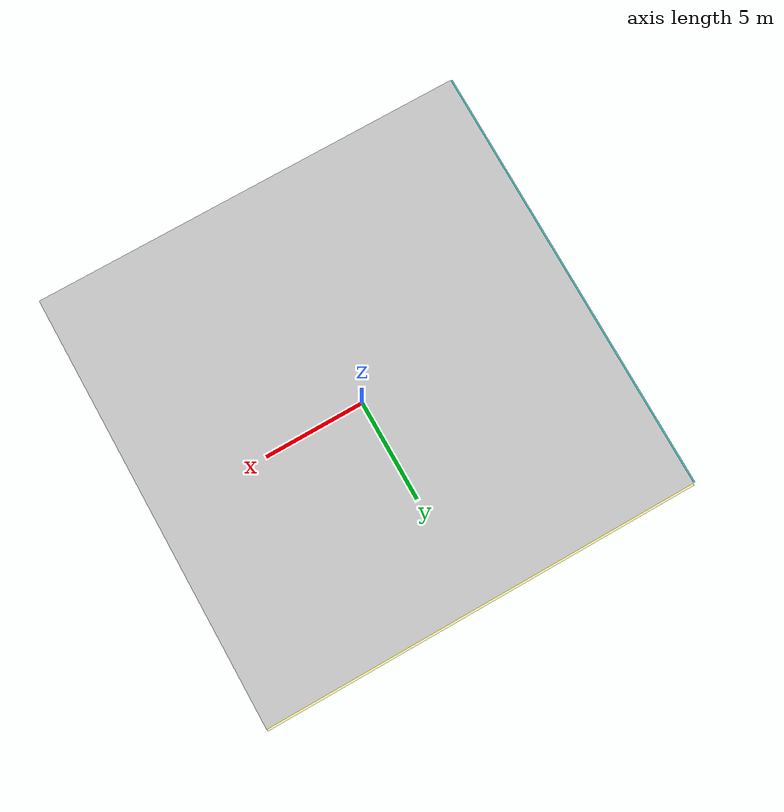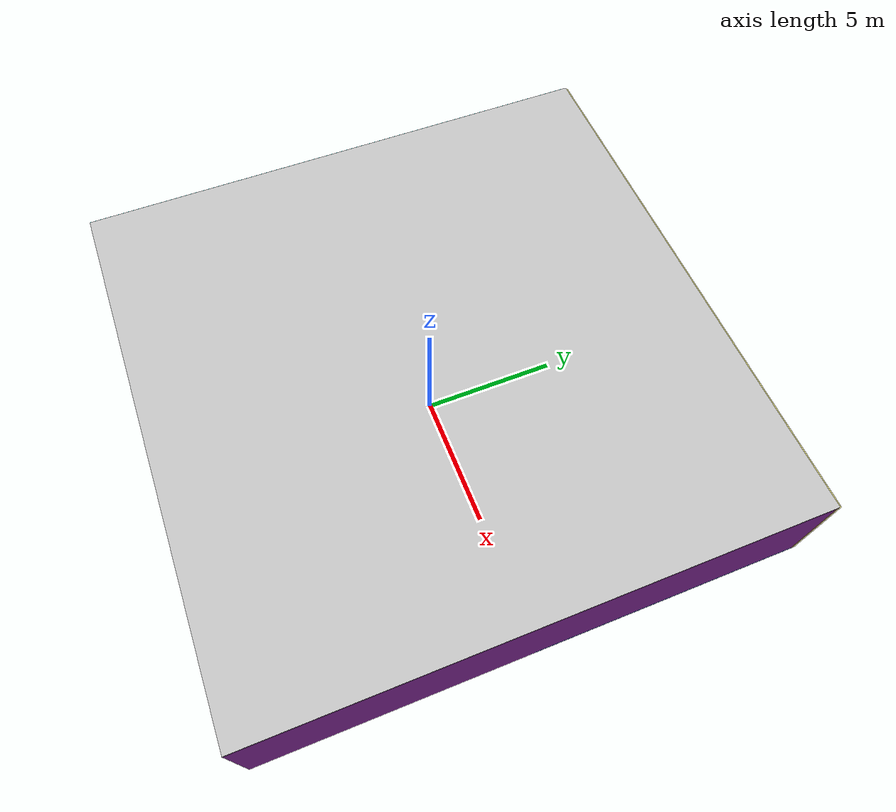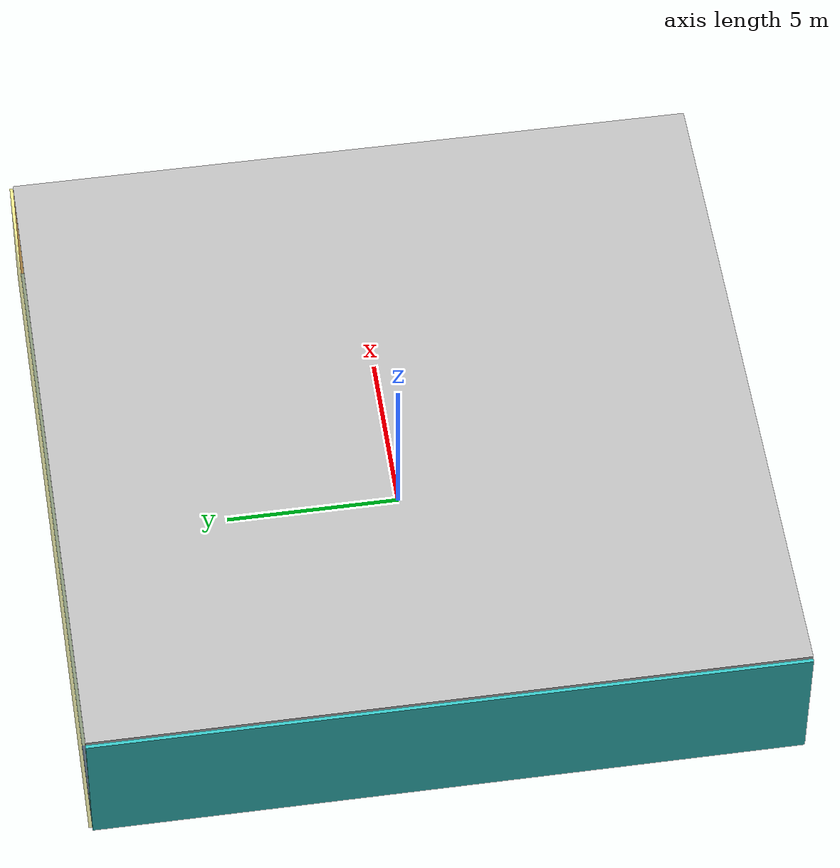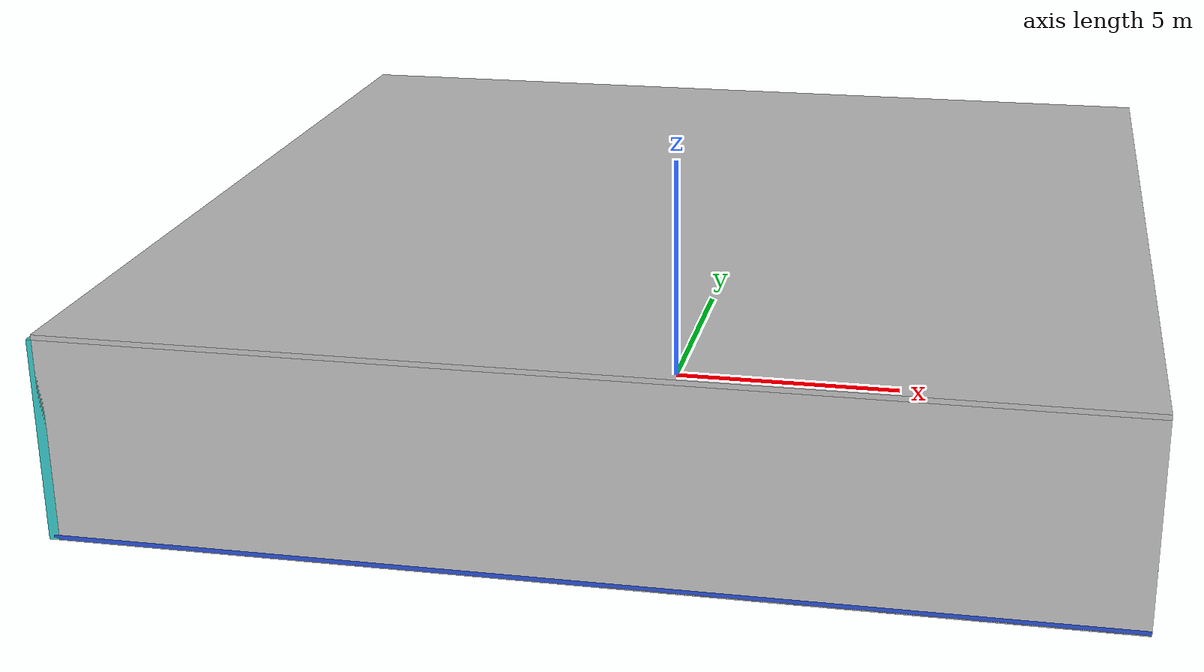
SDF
<sdf version="1.4">
 <world name="default">
  <physics type="ode">
   <max_step_size>0.001</max_step_size>
   <real_time_factor>1</real_time_factor>
   <real_time_update_rate>1000</real_time_update_rate>
   <gravity>0 0 -9.8</gravity>
  </physics>
  <scene><ambient>0.4 0.4 0.4 1</ambient><background>0.7 0.7 0.7 1</background><shadows>1</shadows></scene>
  <model name="Surrounding">
   <static>1</static>
   <link name="Ceiling">
    <collision name="Ceiling_Collision"><geometry><box><size>20 20 0.1</size></box></geometry></collision>
    <visual name="Ceiling_Visual">
     <geometry><box><size>20 20 0.1</size></box></geometry>
     <material>
      <script><uri>file://media/materials/scripts/gazebo.material</uri><name>Gazebo/CloudySky</name></script>
     </material>
    </visual>
    <pose>0 0 4.05 0 0 0</pose>
   </link>
   <link name="Wall_South">
    <collision name="Wall_South_Collision">
     <geometry><box><size>20 0 4</size></box></geometry>
     <pose>0 0 2 0 -0 0</pose>
    </collision>
    <visual name="Wall_South_Visual">
     <pose>0 0 2 0 -0 0</pose>
     <geometry><box><size>20 0 4</size></box></geometry>
     <material>
      <script><uri>file://media/materials/scripts/gazebo.material</uri><name>Gazebo/JointAnchor</name></script>
     </material>
    </visual>
    <velocity_decay><linear>0</linear><angular>0</angular></velocity_decay>
    <pose>0 -10 0 0 -0 0</pose>
   </link>
   <link name="Wall_East">
    <collision name="Wall_21_Collision">
     <geometry><box><size>20 0 4</size></box></geometry>
     <pose>0 0 2 0 -0 0</pose>
    </collision>
    <visual name="Wall_21_Visual">
     <pose>0 0 2 0 -0 0</pose>
     <geometry><box><size>20 0 4</size></box></geometry>
     <material>
      <script><uri>file://media/materials/scripts/gazebo.material</uri><name>Gazebo/PurpleGlow</name></script>
     </material>
    </visual>
    <velocity_decay><linear>0</linear><angular>0</angular></velocity_decay>
    <pose>10 0 0 0 -0 1.5708</pose>
   </link>
   <link name="Wall_North">
    <collision name="Wall_22_Collision">
     <geometry><box><size>20 0.2 4</size></box></geometry>
     <pose>0 0 2 0 -0 0</pose>
    </collision>
    <visual name="Wall_22_Visual">
     <pose>0 0 2 0 -0 0</pose>
     <geometry><box><size>20 0.2 4</size></box></geometry>
     <material>
      <script>
       <uri>file://media/materials/scripts/gazebo.material</uri>
       <name>Gazebo/YellowTransparent</name>
      </script>
     </material>
    </visual>
    <velocity_decay><linear>0</linear><angular>0</angular></velocity_decay>
    <pose>0 10 0 0 -0 0</pose>
   </link>
   <link name="Wall_West">
    <collision name="Wall_23_Collision">
     <geometry><box><size>20 0.2 4</size></box></geometry>
     <pose>0 0 2 0 -0 0</pose>
    </collision>
    <visual name="Wall_23_Visual">
     <pose>0 0 2 0 -0 0</pose>
     <geometry><box><size>20 0.2 4</size></box></geometry>
     <material>
      <script><uri>file://media/materials/scripts/gazebo.material</uri><name>Gazebo/TurquoiseGlow</name></script>
     </material>
    </visual>
    <velocity_decay><linear>0</linear><angular>0</angular></velocity_decay>
    <pose>-10 0 0 0 0 -1.5708</pose>
   </link>
   <link name="Ground_link">
    <collision name="collision">
     <pose>0 0 .05 0 -0 0</pose>
     <geometry><box><size>20 20 0.1</size></box></geometry>
    </collision>
    <visual name="visual">
     <pose>0 0 .05 0 -0 0</pose>
     <geometry><box><size>20 20 0.1</size></box></geometry>
     <material>
      <script><uri>file://media/materials/scripts/gazebo.material</uri><name>Gazebo/BlueGlow</name></script>
     </material>
    </visual>
   </link>
   <static>1</static>
  </model>
  <spherical_coordinates>
   <surface_model>EARTH_WGS84</surface_model>
   <latitude_deg>0</latitude_deg>
   <longitude_deg>0</longitude_deg>
   <elevation>0</elevation>
   <heading_deg>0</heading_deg>
  </spherical_coordinates>
  <light name="lightball_0" type="diffuse">
   <diffuse>0.8 0.8 0.8 1</diffuse>
   <specular>0.2 0.2 0.2 1</specular>
   <attenuation>
    <range>100</range>
    <constant>0.7</constant>
    <linear>0.01</linear>
    <quadratic>0.001</quadratic>
   </attenuation>
   <direction>-0.5 0.1 -0.9</direction>
   <pose>1.18916055037 -3.6581074119 3.52634219054 0 0 0</pose>
  </light>
  <light name="lightball_1" type="diffuse">
   <diffuse>0.8 0.8 0.8 1</diffuse>
   <specular>0.2 0.2 0.2 1</specular>
   <attenuation>
    <range>100</range>
    <constant>0.7</constant>
    <linear>0.01</linear>
    <quadratic>0.001</quadratic>
   </attenuation>
   <direction>-0.5 0.1 -0.9</direction>
   <pose>3.71898935705 -1.81880172734 3.17240587534 0 0 0</pose>
  </light>
  <light name="lightball_2" type="diffuse">
   <diffuse>0.8 0.8 0.8 1</diffuse>
   <specular>0.2 0.2 0.2 1</specular>
   <attenuation>
    <range>100</range>
    <constant>0.7</constant>
    <linear>0.01</linear>
    <quadratic>0.001</quadratic>
   </attenuation>
   <direction>-0.5 0.1 -0.9</direction>
   <pose>8.57153562341 2.12634246039 2.41226669088 0 0 0</pose>
  </light>
  <light name="lightball_3" type="diffuse">
   <diffuse>0.8 0.8 0.8 1</diffuse>
   <specular>0.2 0.2 0.2 1</specular>
   <attenuation>
    <range>100</range>
    <constant>0.7</constant>
    <linear>0.01</linear>
    <quadratic>0.001</quadratic>
   </attenuation>
   <direction>-0.5 0.1 -0.9</direction>
   <pose>5.83811237742 1.41529323857 3.40672052641 0 0 0</pose>
  </light>
  <light name="lightball_4" type="diffuse">
   <diffuse>0.8 0.8 0.8 1</diffuse>
   <specular>0.2 0.2 0.2 1</specular>
   <attenuation>
    <range>100</range>
    <constant>0.7</constant>
    <linear>0.01</linear>
    <quadratic>0.001</quadratic>
   </attenuation>
   <direction>-0.5 0.1 -0.9</direction>
   <pose>8.02703266465 -2.55415822334 1.62737461967 0 0 0</pose>
  </light>
  <light name="lightball_5" type="diffuse">
   <diffuse>0.8 0.8 0.8 1</diffuse>
   <specular>0.2 0.2 0.2 1</specular>
   <attenuation>
    <range>100</range>
    <constant>0.7</constant>
    <linear>0.01</linear>
    <quadratic>0.001</quadratic>
   </attenuation>
   <direction>-0.5 0.1 -0.9</direction>
   <pose>5.87748724927 1.61529279884 1.82752518369 0 0 0</pose>
  </light>
  <light name="lightball_6" type="diffuse">
   <diffuse>0.8 0.8 0.8 1</diffuse>
   <specular>0.2 0.2 0.2 1</specular>
   <attenuation>
    <range>100</range>
    <constant>0.7</constant>
    <linear>0.01</linear>
    <quadratic>0.001</quadratic>
   </attenuation>
   <direction>-0.5 0.1 -0.9</direction>
   <pose>9.26373243355 8.4191814682 3.26118050662 0 0 0</pose>
  </light>
  <include><uri>model://cabinet</uri><pose>-3.76622948651 -7.44058121748 0 0 0 1.64195530275</pose></include>
  <include><uri>model://table</uri><pose>-0.347805548938 2.59431408546 0 0 0 2.71670673436</pose></include>
  <include><uri>model://cabinet</uri><pose>5.32791955033 4.24001121821 0 0 0 2.1423235139</pose></include>
 </world>
</sdf>

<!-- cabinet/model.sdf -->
<sdf version="1.5">
  <model name="cabinet">
    <static>true</static>
    <link name="cabinet_bottom_plate">
      <inertial>
        <pose>0 0 -1 0 0 0</pose>
        <inertia>
          <ixx>2.050000</ixx>
          <ixy>0</ixy>
          <ixz>0</ixz>
          <iyy>2.050000</iyy>
          <iyz>0</iyz>
          <izz>2.050000</izz>
        </inertia>
        <mass>25.000000</mass>
      </inertial>
      <collision name="cabinet_bottom_plate_geom">
        <pose>0 0 0.010000 0 0 0</pose>
        <geometry>
          <box>
            <size>0.450000 0.450000 0.020000</size>
          </box>
        </geometry>
      </collision>
      <visual name="cabinet_bottom_plate_geom_visual">
        <pose>0 0 0.010000 0 0 0</pose>
        <geometry>
          <box>
            <size>0.450000 0.450000 0.020000</size>
          </box>
        </geometry>
        <material>
          <script>
            <uri>model://media/materials/scripts/gazebo.material</uri>
            <name>Gazebo/Wood</name>
          </script>
        </material>
      </visual>
      <collision name="cabinet_bottom_plate_geom_cabinet_back_plate">
        <pose>0.235000 0 0.510000 0 0 0</pose>
        <geometry>
          <box>
            <size>0.020000 0.450000 1.020000</size>
          </box>
        </geometry>
      </collision>
      <visual name="cabinet_bottom_plate_geom_cabinet_back_plate_visual">
        <pose>0.235000 0 0.510000 0 0 0</pose>
        <geometry>
          <box>
            <size>0.020000 0.450000 1.020000</size>
          </box>
        </geometry>
        <material>
          <script>
            <uri>model://media/materials/scripts/gazebo.material</uri>
            <name>Gazebo/Wood</name>
          </script>
        </material>
      </visual>
      <collision name="cabinet_bottom_plate_geom_cabinet_left_plate">
        <pose>0 0.235000 0.510000 0 0 0</pose>
        <geometry>
          <box>
            <size>0.450000 0.020000 1.020000</size>
          </box>
        </geometry>
      </collision>
      <visual name="cabinet_bottom_plate_geom_cabinet_left_plate_visual">
        <pose>0 0.235000 0.510000 0 0 0</pose>
        <geometry>
          <box>
            <size>0.450000 0.020000 1.020000</size>
          </box>
        </geometry>
        <material>
          <script>
            <uri>model://media/materials/scripts/gazebo.material</uri>
            <name>Gazebo/Wood</name>
          </script>
        </material>
      </visual>
      <collision name="cabinet_bottom_plate_geom_cabinet_middle_plate">
        <pose>0 0 0.510000 0 0 0</pose>
        <geometry>
          <box>
            <size>0.450000 0.450000 0.020000</size>
          </box>
        </geometry>
      </collision>
      <visual name="cabinet_bottom_plate_geom_cabinet_middle_plate_visual">
        <pose>0 0 0.510000 0 0 0</pose>
        <geometry>
          <box>
            <size>0.450000 0.450000 0.020000</size>
          </box>
        </geometry>
        <material>
          <script>
            <uri>model://media/materials/scripts/gazebo.material</uri>
            <name>Gazebo/Wood</name>
          </script>
        </material>
      </visual>
      <collision name="cabinet_bottom_plate_geom_cabinet_right_plate">
        <pose>0 -0.235000 0.510000 0 0 0</pose>
        <geometry>
          <box>
            <size>0.450000 0.020000 1.020000</size>
          </box>
        </geometry>
      </collision>
      <visual name="cabinet_bottom_plate_geom_cabinet_right_plate_visual">
        <pose>0 -0.235000 0.510000 0 0 0</pose>
        <geometry>
          <box>
            <size>0.450000 0.020000 1.020000</size>
          </box>
        </geometry>
        <material>
          <script>
            <uri>model://media/materials/scripts/gazebo.material</uri>
            <name>Gazebo/Wood</name>
          </script>
        </material>
      </visual>
      <collision name="cabinet_bottom_plate_geom_cabinet_top_plate">
        <pose>0 0 1.010000 0 0 0</pose>
        <geometry>
          <box>
            <size>0.450000 0.450000 0.020000</size>
          </box>
        </geometry>
      </collision>
      <visual name="cabinet_bottom_plate_geom_cabinet_top_plate_visual">
        <pose>0 0 1.010000 0 0 0</pose>
        <geometry>
          <box>
            <size>0.450000 0.450000 0.020000</size>
          </box>
        </geometry>
        <material>
          <script>
            <uri>model://media/materials/scripts/gazebo.material</uri>
            <name>Gazebo/Wood</name>
          </script>
        </material>
      </visual>
    </link>
  </model>
</sdf>

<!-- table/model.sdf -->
<sdf version="1.5">
  <model name="table">
    <static>true</static>
    <link name="link">
      <collision name="surface">
        <pose>0 0 1.0 0 0 0</pose>
        <geometry>
          <box>
            <size>1.5 0.8 0.03</size>
          </box>
        </geometry>
        <surface>
          <friction>
            <ode>
              <mu>0.6</mu>
              <mu2>0.6</mu2>
            </ode>
          </friction>
        </surface>
      </collision>
      <visual name="visual1">
        <pose>0 0 1.0 0 0 0</pose>
        <geometry>
          <box>
            <size>1.5 0.8 0.03</size>
          </box>
        </geometry>
        <material>
          <script>
            <uri>model://media/materials/scripts/gazebo.material</uri>
            <name>Gazebo/Wood</name>
          </script>
        </material>
      </visual>
      <collision name="front_left_leg">
        <pose>0.68 0.38 0.5 0 0 0</pose>
        <geometry>
          <cylinder>
            <radius>0.02</radius>
            <length>1.0</length>
          </cylinder>
        </geometry>
      </collision>
      <visual name="front_left_leg">
        <pose>0.68 0.38 0.5 0 0 0</pose>
        <geometry>
          <cylinder>
            <radius>0.02</radius>
            <length>1.0</length>
          </cylinder>
        </geometry>
        <material>
          <script>
            <uri>model://media/materials/scripts/gazebo.material</uri>
            <name>Gazebo/Grey</name>
          </script>
        </material>
      </visual>
      <collision name="front_right_leg">
        <pose>0.68 -0.38 0.5 0 0 0</pose>
        <geometry>
          <cylinder>
            <radius>0.02</radius>
            <length>1.0</length>
          </cylinder>
        </geometry>
      </collision>
      <visual name="front_right_leg">
        <pose>0.68 -0.38 0.5 0 0 0</pose>
        <geometry>
          <cylinder>
            <radius>0.02</radius>
            <length>1.0</length>
          </cylinder>
        </geometry>
        <material>
          <script>
            <uri>model://media/materials/scripts/gazebo.material</uri>
            <name>Gazebo/Grey</name>
          </script>
        </material>
      </visual>
      <collision name="back_right_leg">
        <pose>-0.68 -0.38 0.5 0 0 0</pose>
        <geometry>
          <cylinder>
            <radius>0.02</radius>
            <length>1.0</length>
          </cylinder>
        </geometry>
      </collision>
      <visual name="back_right_leg">
        <pose>-0.68 -0.38 0.5 0 0 0</pose>
        <geometry>
          <cylinder>
            <radius>0.02</radius>
            <length>1.0</length>
          </cylinder>
        </geometry>
        <material>
          <script>
            <uri>model://media/materials/scripts/gazebo.material</uri>
            <name>Gazebo/Grey</name>
          </script>
        </material>
      </visual>
      <collision name="back_left_leg">
        <pose>-0.68 0.38 0.5 0 0 0</pose>
        <geometry>
          <cylinder>
            <radius>0.02</radius>
            <length>1.0</length>
          </cylinder>
        </geometry>
      </collision>
      <visual name="back_left_leg">
        <pose>-0.68 0.38 0.5 0 0 0</pose>
        <geometry>
          <cylinder>
            <radius>0.02</radius>
            <length>1.0</length>
          </cylinder>
        </geometry>
        <material>
          <script>
            <uri>model://media/materials/scripts/gazebo.material</uri>
            <name>Gazebo/Grey</name>
          </script>
        </material>
      </visual>
    </link>
  </model>
</sdf>
